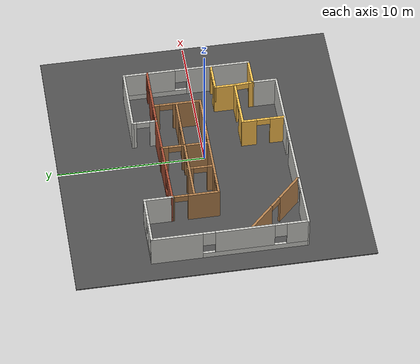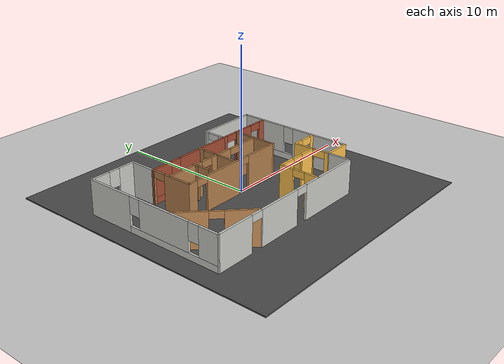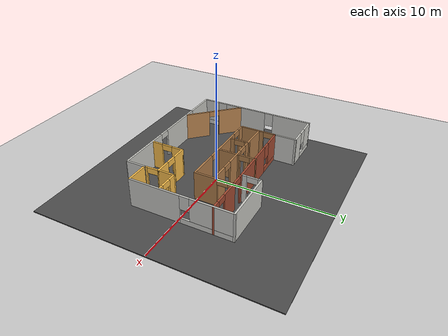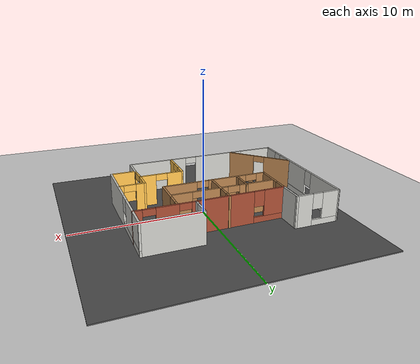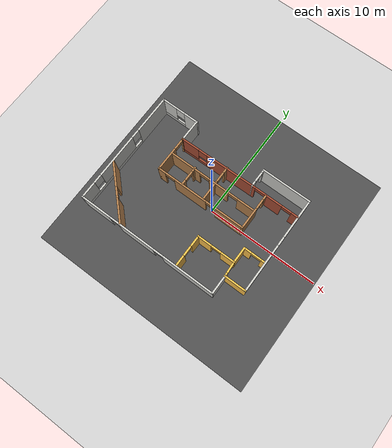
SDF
<sdf version="1.6">
 <world name="default">
  <model name="ground_plane">
   <static>1</static>
   <link name="link">
    <collision name="collision">
     <geometry><plane><normal>0 0 1</normal><size>100 100</size></plane></geometry>
     <surface>
      <contact><collide_bitmask>65535</collide_bitmask></contact>
      <friction><ode><mu>100</mu><mu2>50</mu2></ode></friction>
     </surface>
    </collision>
    <visual name="visual">
     <cast_shadows>0</cast_shadows>
     <geometry><plane><normal>0 0 1</normal><size>100 100</size></plane></geometry>
     <material>
      <script><uri>file://media/materials/scripts/gazebo.material</uri><name>Gazebo/Grey</name></script>
     </material>
    </visual>
   </link>
  </model>
  <model name="s_building">
   <pose>-1.21112 -0.402781 0 0 -0 0</pose>
   <link name="Wall_0">
    <pose>-7.22496 0 0 0 0 -1.56983</pose>
    <visual name="Wall_0_Visual_0">
     <pose>-3.5193 0 1.25 0 -0 0</pose>
     <geometry><box><size>3.4614 0.15 2.5</size></box></geometry>
     <material>
      <script><uri>file://media/materials/scripts/gazebo.material</uri><name>Gazebo/CeilingTiled</name></script>
      <ambient>1 0.764706 0.305882 1</ambient>
     </material>
     <meta><layer>0</layer></meta>
    </visual>
    <collision name="Wall_0_Collision_0">
     <geometry><box><size>3.4614 0.15 2.5</size></box></geometry>
     <pose>-3.5193 0 1.25 0 -0 0</pose>
    </collision>
    <visual name="Wall_0_Visual_1">
     <pose>1.7307 0 0.25 0 -0 0</pose>
     <geometry><box><size>7.0386 0.15 0.5</size></box></geometry>
     <material>
      <script><uri>file://media/materials/scripts/gazebo.material</uri><name>Gazebo/CeilingTiled</name></script>
      <ambient>1 0.764706 0.305882 1</ambient>
     </material>
     <meta><layer>0</layer></meta>
    </visual>
    <collision name="Wall_0_Collision_1">
     <geometry><box><size>7.0386 0.15 0.5</size></box></geometry>
     <pose>1.7307 0 0.25 0 -0 0</pose>
    </collision>
    <visual name="Wall_0_Visual_2">
     <pose>0.984095 0 1.5 0 -0 0</pose>
     <geometry><box><size>3.94539 0.15 2</size></box></geometry>
     <material>
      <script><uri>file://media/materials/scripts/gazebo.material</uri><name>Gazebo/CeilingTiled</name></script>
      <ambient>1 0.764706 0.305882 1</ambient>
     </material>
     <meta><layer>0</layer></meta>
    </visual>
    <collision name="Wall_0_Collision_2">
     <geometry><box><size>3.94539 0.15 2</size></box></geometry>
     <pose>0.984095 0 1.5 0 -0 0</pose>
    </collision>
    <visual name="Wall_0_Visual_3">
     <pose>4.5034 0 1.5 0 -0 0</pose>
     <geometry><box><size>1.49321 0.15 2</size></box></geometry>
     <material>
      <script><uri>file://media/materials/scripts/gazebo.material</uri><name>Gazebo/CeilingTiled</name></script>
      <ambient>1 0.764706 0.305882 1</ambient>
     </material>
     <meta><layer>0</layer></meta>
    </visual>
    <collision name="Wall_0_Collision_3">
     <geometry><box><size>1.49321 0.15 2</size></box></geometry>
     <pose>4.5034 0 1.5 0 -0 0</pose>
    </collision>
    <visual name="Wall_0_Visual_4">
     <pose>-1.3886 0 1.9 0 -0 0</pose>
     <geometry><box><size>0.8 0.15 1.2</size></box></geometry>
     <material>
      <script><uri>file://media/materials/scripts/gazebo.material</uri><name>Gazebo/CeilingTiled</name></script>
      <ambient>1 0.764706 0.305882 1</ambient>
     </material>
     <meta><layer>0</layer></meta>
    </visual>
    <collision name="Wall_0_Collision_4">
     <geometry><box><size>0.8 0.15 1.2</size></box></geometry>
     <pose>-1.3886 0 1.9 0 -0 0</pose>
    </collision>
    <visual name="Wall_0_Visual_5">
     <pose>3.35679 0 1.9 0 -0 0</pose>
     <geometry><box><size>0.8 0.15 1.2</size></box></geometry>
     <material>
      <script><uri>file://media/materials/scripts/gazebo.material</uri><name>Gazebo/CeilingTiled</name></script>
      <ambient>1 0.764706 0.305882 1</ambient>
     </material>
     <meta><layer>0</layer></meta>
    </visual>
    <collision name="Wall_0_Collision_5">
     <geometry><box><size>0.8 0.15 1.2</size></box></geometry>
     <pose>3.35679 0 1.9 0 -0 0</pose>
    </collision>
   </link>
   <link name="Wall_1">
    <pose>-0.928655 -5.175 0 0 -0 0</pose>
    <visual name="Wall_1_Visual_0">
     <pose>-4.95324 0 1.25 0 -0 0</pose>
     <geometry><box><size>2.82615 0.15 2.5</size></box></geometry>
     <material>
      <script><uri>file://media/materials/scripts/gazebo.material</uri><name>Gazebo/CeilingTiled</name></script>
      <ambient>1 0.764706 0.305882 1</ambient>
     </material>
     <meta><layer>0</layer></meta>
    </visual>
    <collision name="Wall_1_Collision_0">
     <geometry><box><size>2.82615 0.15 2.5</size></box></geometry>
     <pose>-4.95324 0 1.25 0 -0 0</pose>
    </collision>
    <visual name="Wall_1_Visual_1">
     <pose>-0.973326 0 1.25 0 -0 0</pose>
     <geometry><box><size>3.33368 0.15 2.5</size></box></geometry>
     <material>
      <script><uri>file://media/materials/scripts/gazebo.material</uri><name>Gazebo/CeilingTiled</name></script>
      <ambient>1 0.764706 0.305882 1</ambient>
     </material>
     <meta><layer>0</layer></meta>
    </visual>
    <collision name="Wall_1_Collision_1">
     <geometry><box><size>3.33368 0.15 2.5</size></box></geometry>
     <pose>-0.973326 0 1.25 0 -0 0</pose>
    </collision>
    <visual name="Wall_1_Visual_2">
     <pose>3.97991 0 1.25 0 -0 0</pose>
     <geometry><box><size>4.7728 0.15 2.5</size></box></geometry>
     <material>
      <script><uri>file://media/materials/scripts/gazebo.material</uri><name>Gazebo/CeilingTiled</name></script>
      <ambient>1 0.764706 0.305882 1</ambient>
     </material>
     <meta><layer>0</layer></meta>
    </visual>
    <collision name="Wall_1_Collision_2">
     <geometry><box><size>4.7728 0.15 2.5</size></box></geometry>
     <pose>3.97991 0 1.25 0 -0 0</pose>
    </collision>
    <visual name="Wall_1_Visual_3">
     <pose>-3.09016 0 2.25 0 -0 0</pose>
     <geometry><box><size>0.9 0.15 0.5</size></box></geometry>
     <material>
      <script><uri>file://media/materials/scripts/gazebo.material</uri><name>Gazebo/CeilingTiled</name></script>
      <ambient>1 0.764706 0.305882 1</ambient>
     </material>
     <meta><layer>0</layer></meta>
    </visual>
    <collision name="Wall_1_Collision_3">
     <geometry><box><size>0.9 0.15 0.5</size></box></geometry>
     <pose>-3.09016 0 2.25 0 -0 0</pose>
    </collision>
    <visual name="Wall_1_Visual_4">
     <pose>1.14351 0 2.25 0 -0 0</pose>
     <geometry><box><size>0.9 0.15 0.5</size></box></geometry>
     <material>
      <script><uri>file://media/materials/scripts/gazebo.material</uri><name>Gazebo/CeilingTiled</name></script>
      <ambient>1 0.764706 0.305882 1</ambient>
     </material>
     <meta><layer>0</layer></meta>
    </visual>
    <collision name="Wall_1_Collision_4">
     <geometry><box><size>0.9 0.15 0.5</size></box></geometry>
     <pose>1.14351 0 2.25 0 -0 0</pose>
    </collision>
   </link>
   <link name="Wall_11">
    <pose>5.05504 3.425 0 0 -0 0</pose>
    <visual name="Wall_11_Visual_0">
     <pose>-2.0487 0 1.25 0 -0 0</pose>
     <geometry><box><size>0.402592 0.15 2.5</size></box></geometry>
     <material>
      <script><uri>file://media/materials/scripts/gazebo.material</uri><name>Gazebo/Bricks</name></script>
      <ambient>1 0.764706 0.305882 1</ambient>
     </material>
     <meta><layer>0</layer></meta>
    </visual>
    <collision name="Wall_11_Collision_0">
     <geometry><box><size>0.402592 0.15 2.5</size></box></geometry>
     <pose>-2.0487 0 1.25 0 -0 0</pose>
    </collision>
    <visual name="Wall_11_Visual_1">
     <pose>-0.141263 0 1.25 0 -0 0</pose>
     <geometry><box><size>1.61229 0.15 2.5</size></box></geometry>
     <material>
      <script><uri>file://media/materials/scripts/gazebo.material</uri><name>Gazebo/Bricks</name></script>
      <ambient>1 0.764706 0.305882 1</ambient>
     </material>
     <meta><layer>0</layer></meta>
    </visual>
    <collision name="Wall_11_Collision_1">
     <geometry><box><size>1.61229 0.15 2.5</size></box></geometry>
     <pose>-0.141263 0 1.25 0 -0 0</pose>
    </collision>
    <visual name="Wall_11_Visual_2">
     <pose>1.90744 0 1.25 0 -0 0</pose>
     <geometry><box><size>0.685117 0.15 2.5</size></box></geometry>
     <material>
      <script><uri>file://media/materials/scripts/gazebo.material</uri><name>Gazebo/Bricks</name></script>
      <ambient>1 0.764706 0.305882 1</ambient>
     </material>
     <meta><layer>0</layer></meta>
    </visual>
    <collision name="Wall_11_Collision_2">
     <geometry><box><size>0.685117 0.15 2.5</size></box></geometry>
     <pose>1.90744 0 1.25 0 -0 0</pose>
    </collision>
    <visual name="Wall_11_Visual_3">
     <pose>-1.39741 0 2.25 0 -0 0</pose>
     <geometry><box><size>0.9 0.15 0.5</size></box></geometry>
     <material>
      <script><uri>file://media/materials/scripts/gazebo.material</uri><name>Gazebo/Bricks</name></script>
      <ambient>1 0.764706 0.305882 1</ambient>
     </material>
     <meta><layer>0</layer></meta>
    </visual>
    <collision name="Wall_11_Collision_3">
     <geometry><box><size>0.9 0.15 0.5</size></box></geometry>
     <pose>-1.39741 0 2.25 0 -0 0</pose>
    </collision>
    <visual name="Wall_11_Visual_4">
     <pose>1.11488 0 2.25 0 -0 0</pose>
     <geometry><box><size>0.9 0.15 0.5</size></box></geometry>
     <material>
      <script><uri>file://media/materials/scripts/gazebo.material</uri><name>Gazebo/Bricks</name></script>
      <ambient>1 0.764706 0.305882 1</ambient>
     </material>
     <meta><layer>0</layer></meta>
    </visual>
    <collision name="Wall_11_Collision_4">
     <geometry><box><size>0.9 0.15 0.5</size></box></geometry>
     <pose>1.11488 0 2.25 0 -0 0</pose>
    </collision>
   </link>
   <link name="Wall_13">
    <pose>-3.86997 1.775 0 0 0 -1.5708</pose>
    <visual name="Wall_13_Visual_0">
     <pose>-1.5189 0 1.25 0 -0 0</pose>
     <geometry><box><size>0.212208 0.15 2.5</size></box></geometry>
     <material>
      <script><uri>file://media/materials/scripts/gazebo.material</uri><name>Gazebo/Wood</name></script>
      <ambient>1 1 1 1</ambient>
     </material>
     <meta><layer>0</layer></meta>
    </visual>
    <collision name="Wall_13_Collision_0">
     <geometry><box><size>0.212208 0.15 2.5</size></box></geometry>
     <pose>-1.5189 0 1.25 0 -0 0</pose>
    </collision>
    <visual name="Wall_13_Visual_1">
     <pose>0.556104 0 1.25 0 -0 0</pose>
     <geometry><box><size>2.13779 0.15 2.5</size></box></geometry>
     <material>
      <script><uri>file://media/materials/scripts/gazebo.material</uri><name>Gazebo/Wood</name></script>
      <ambient>1 1 1 1</ambient>
     </material>
     <meta><layer>0</layer></meta>
    </visual>
    <collision name="Wall_13_Collision_1">
     <geometry><box><size>2.13779 0.15 2.5</size></box></geometry>
     <pose>0.556104 0 1.25 0 -0 0</pose>
    </collision>
    <visual name="Wall_13_Visual_2">
     <pose>-0.962792 0 2.25 0 -0 0</pose>
     <geometry><box><size>0.9 0.15 0.5</size></box></geometry>
     <material>
      <script><uri>file://media/materials/scripts/gazebo.material</uri><name>Gazebo/Wood</name></script>
      <ambient>1 1 1 1</ambient>
     </material>
     <meta><layer>0</layer></meta>
    </visual>
    <collision name="Wall_13_Collision_2">
     <geometry><box><size>0.9 0.15 0.5</size></box></geometry>
     <pose>-0.962792 0 2.25 0 -0 0</pose>
    </collision>
   </link>
   <link name="Wall_14">
    <pose>0.180036 0.225 0 0 -0 0</pose>
    <visual name="Wall_14_Visual_0">
     <pose>-3.75885 0 1.25 0 -0 0</pose>
     <geometry><box><size>0.732292 0.15 2.5</size></box></geometry>
     <material>
      <script><uri>file://media/materials/scripts/gazebo.material</uri><name>Gazebo/Wood</name></script>
      <ambient>1 1 1 1</ambient>
     </material>
     <meta><layer>0</layer></meta>
    </visual>
    <collision name="Wall_14_Collision_0">
     <geometry><box><size>0.732292 0.15 2.5</size></box></geometry>
     <pose>-3.75885 0 1.25 0 -0 0</pose>
    </collision>
    <visual name="Wall_14_Visual_1">
     <pose>-0.965442 0 1.25 0 -0 0</pose>
     <geometry><box><size>3.05453 0.15 2.5</size></box></geometry>
     <material>
      <script><uri>file://media/materials/scripts/gazebo.material</uri><name>Gazebo/Wood</name></script>
      <ambient>1 1 1 1</ambient>
     </material>
     <meta><layer>0</layer></meta>
    </visual>
    <collision name="Wall_14_Collision_1">
     <geometry><box><size>3.05453 0.15 2.5</size></box></geometry>
     <pose>-0.965442 0 1.25 0 -0 0</pose>
    </collision>
    <visual name="Wall_14_Visual_2">
     <pose>2.79341 0 1.25 0 -0 0</pose>
     <geometry><box><size>2.66318 0.15 2.5</size></box></geometry>
     <material>
      <script><uri>file://media/materials/scripts/gazebo.material</uri><name>Gazebo/Wood</name></script>
      <ambient>1 1 1 1</ambient>
     </material>
     <meta><layer>0</layer></meta>
    </visual>
    <collision name="Wall_14_Collision_2">
     <geometry><box><size>2.66318 0.15 2.5</size></box></geometry>
     <pose>2.79341 0 1.25 0 -0 0</pose>
    </collision>
    <visual name="Wall_14_Visual_3">
     <pose>-2.94271 0 2.25 0 -0 0</pose>
     <geometry><box><size>0.9 0.15 0.5</size></box></geometry>
     <material>
      <script><uri>file://media/materials/scripts/gazebo.material</uri><name>Gazebo/Wood</name></script>
      <ambient>1 1 1 1</ambient>
     </material>
     <meta><layer>0</layer></meta>
    </visual>
    <collision name="Wall_14_Collision_3">
     <geometry><box><size>0.9 0.15 0.5</size></box></geometry>
     <pose>-2.94271 0 2.25 0 -0 0</pose>
    </collision>
    <visual name="Wall_14_Visual_4">
     <pose>1.01182 0 2.25 0 -0 0</pose>
     <geometry><box><size>0.9 0.15 0.5</size></box></geometry>
     <material>
      <script><uri>file://media/materials/scripts/gazebo.material</uri><name>Gazebo/Wood</name></script>
      <ambient>1 1 1 1</ambient>
     </material>
     <meta><layer>0</layer></meta>
    </visual>
    <collision name="Wall_14_Collision_4">
     <geometry><box><size>0.9 0.15 0.5</size></box></geometry>
     <pose>1.01182 0 2.25 0 -0 0</pose>
    </collision>
   </link>
   <link name="Wall_15">
    <pose>4.23004 1.775 0 0 -0 1.5708</pose>
    <visual name="Wall_15_Visual_0">
     <pose>-0.649152 0 1.25 0 -0 0</pose>
     <geometry><box><size>1.9517 0.15 2.5</size></box></geometry>
     <material>
      <script><uri>file://media/materials/scripts/gazebo.material</uri><name>Gazebo/Wood</name></script>
      <ambient>1 1 1 1</ambient>
     </material>
     <meta><layer>0</layer></meta>
    </visual>
    <collision name="Wall_15_Collision_0">
     <geometry><box><size>1.9517 0.15 2.5</size></box></geometry>
     <pose>-0.649152 0 1.25 0 -0 0</pose>
    </collision>
    <visual name="Wall_15_Visual_1">
     <pose>1.42585 0 1.25 0 -0 0</pose>
     <geometry><box><size>0.398304 0.15 2.5</size></box></geometry>
     <material>
      <script><uri>file://media/materials/scripts/gazebo.material</uri><name>Gazebo/Wood</name></script>
      <ambient>1 1 1 1</ambient>
     </material>
     <meta><layer>0</layer></meta>
    </visual>
    <collision name="Wall_15_Collision_1">
     <geometry><box><size>0.398304 0.15 2.5</size></box></geometry>
     <pose>1.42585 0 1.25 0 -0 0</pose>
    </collision>
    <visual name="Wall_15_Visual_2">
     <pose>0.776696 0 2.25 0 -0 0</pose>
     <geometry><box><size>0.9 0.15 0.5</size></box></geometry>
     <material>
      <script><uri>file://media/materials/scripts/gazebo.material</uri><name>Gazebo/Wood</name></script>
      <ambient>1 1 1 1</ambient>
     </material>
     <meta><layer>0</layer></meta>
    </visual>
    <collision name="Wall_15_Collision_2">
     <geometry><box><size>0.9 0.15 0.5</size></box></geometry>
     <pose>0.776696 0 2.25 0 -0 0</pose>
    </collision>
   </link>
   <link name="Wall_17">
    <pose>0.138801 1.85384 0 0 -0 0</pose>
    <visual name="Wall_17_Visual_0">
     <pose>-2.58243 0 1.25 0 -0 0</pose>
     <geometry><box><size>2.83515 0.15 2.5</size></box></geometry>
     <material>
      <script><uri>file://media/materials/scripts/gazebo.material</uri><name>Gazebo/Wood</name></script>
      <ambient>1 1 1 1</ambient>
     </material>
     <meta><layer>0</layer></meta>
    </visual>
    <collision name="Wall_17_Collision_0">
     <geometry><box><size>2.83515 0.15 2.5</size></box></geometry>
     <pose>-2.58243 0 1.25 0 -0 0</pose>
    </collision>
    <visual name="Wall_17_Visual_1">
     <pose>0.657606 0 1.25 0 -0 0</pose>
     <geometry><box><size>1.84491 0.15 2.5</size></box></geometry>
     <material>
      <script><uri>file://media/materials/scripts/gazebo.material</uri><name>Gazebo/Wood</name></script>
      <ambient>1 1 1 1</ambient>
     </material>
     <meta><layer>0</layer></meta>
    </visual>
    <collision name="Wall_17_Collision_1">
     <geometry><box><size>1.84491 0.15 2.5</size></box></geometry>
     <pose>0.657606 0 1.25 0 -0 0</pose>
    </collision>
    <visual name="Wall_17_Visual_2">
     <pose>3.24003 0 1.25 0 -0 0</pose>
     <geometry><box><size>1.51994 0.15 2.5</size></box></geometry>
     <material>
      <script><uri>file://media/materials/scripts/gazebo.material</uri><name>Gazebo/Wood</name></script>
      <ambient>1 1 1 1</ambient>
     </material>
     <meta><layer>0</layer></meta>
    </visual>
    <collision name="Wall_17_Collision_2">
     <geometry><box><size>1.51994 0.15 2.5</size></box></geometry>
     <pose>3.24003 0 1.25 0 -0 0</pose>
    </collision>
    <visual name="Wall_17_Visual_3">
     <pose>-0.71485 0 2.25 0 -0 0</pose>
     <geometry><box><size>0.9 0.15 0.5</size></box></geometry>
     <material>
      <script><uri>file://media/materials/scripts/gazebo.material</uri><name>Gazebo/Wood</name></script>
      <ambient>1 1 1 1</ambient>
     </material>
     <meta><layer>0</layer></meta>
    </visual>
    <collision name="Wall_17_Collision_3">
     <geometry><box><size>0.9 0.15 0.5</size></box></geometry>
     <pose>-0.71485 0 2.25 0 -0 0</pose>
    </collision>
    <visual name="Wall_17_Visual_4">
     <pose>2.03006 0 2.25 0 -0 0</pose>
     <geometry><box><size>0.9 0.15 0.5</size></box></geometry>
     <material>
      <script><uri>file://media/materials/scripts/gazebo.material</uri><name>Gazebo/Wood</name></script>
      <ambient>1 1 1 1</ambient>
     </material>
     <meta><layer>0</layer></meta>
    </visual>
    <collision name="Wall_17_Collision_4">
     <geometry><box><size>0.9 0.15 0.5</size></box></geometry>
     <pose>2.03006 0 2.25 0 -0 0</pose>
    </collision>
   </link>
   <link name="Wall_19">
    <pose>0.447477 1.88565 0 0 0 -1.5708</pose>
    <visual name="Wall_19_Visual_0">
     <pose>-1.34726 0 1.25 0 -0 0</pose>
     <geometry><box><size>0.555478 0.15 2.5</size></box></geometry>
     <material>
      <script><uri>file://media/materials/scripts/gazebo.material</uri><name>Gazebo/Wood</name></script>
      <ambient>1 1 1 1</ambient>
     </material>
     <meta><layer>0</layer></meta>
    </visual>
    <collision name="Wall_19_Collision_0">
     <geometry><box><size>0.555478 0.15 2.5</size></box></geometry>
     <pose>-1.34726 0 1.25 0 -0 0</pose>
    </collision>
    <visual name="Wall_19_Visual_1">
     <pose>0.727739 0 1.25 0 -0 0</pose>
     <geometry><box><size>1.79452 0.15 2.5</size></box></geometry>
     <material>
      <script><uri>file://media/materials/scripts/gazebo.material</uri><name>Gazebo/Wood</name></script>
      <ambient>1 1 1 1</ambient>
     </material>
     <meta><layer>0</layer></meta>
    </visual>
    <collision name="Wall_19_Collision_1">
     <geometry><box><size>1.79452 0.15 2.5</size></box></geometry>
     <pose>0.727739 0 1.25 0 -0 0</pose>
    </collision>
    <visual name="Wall_19_Visual_2">
     <pose>-0.619522 0 2.25 0 -0 0</pose>
     <geometry><box><size>0.9 0.15 0.5</size></box></geometry>
     <material>
      <script><uri>file://media/materials/scripts/gazebo.material</uri><name>Gazebo/Wood</name></script>
      <ambient>1 1 1 1</ambient>
     </material>
     <meta><layer>0</layer></meta>
    </visual>
    <collision name="Wall_19_Collision_2">
     <geometry><box><size>0.9 0.15 0.5</size></box></geometry>
     <pose>-0.619522 0 2.25 0 -0 0</pose>
    </collision>
   </link>
   <link name="Wall_2">
    <collision name="Wall_2_Collision">
     <geometry><box><size>1.75 0.15 2.5</size></box></geometry>
     <pose>0 0 1.25 0 -0 0</pose>
    </collision>
    <visual name="Wall_2_Visual">
     <pose>0 0 1.25 0 -0 0</pose>
     <geometry><box><size>1.75 0.15 2.5</size></box></geometry>
     <material>
      <script><uri>file://media/materials/scripts/gazebo.material</uri><name>Gazebo/CeilingTiled</name></script>
      <ambient>1 0.764706 0.305882 1</ambient>
     </material>
     <meta><layer>0</layer></meta>
    </visual>
    <pose>5.36266 -4.32848 0 0 -0 1.5708</pose>
   </link>
   <link name="Wall_21">
    <pose>-1.59957 1.14688 0 0 0 -1.5708</pose>
    <visual name="Wall_21_Visual_0">
     <pose>-0.643785 0 1.25 0 -0 0</pose>
     <geometry><box><size>0.46243 0.15 2.5</size></box></geometry>
     <material>
      <script><uri>file://media/materials/scripts/gazebo.material</uri><name>Gazebo/Wood</name></script>
      <ambient>1 1 1 1</ambient>
     </material>
     <meta><layer>0</layer></meta>
    </visual>
    <collision name="Wall_21_Collision_0">
     <geometry><box><size>0.46243 0.15 2.5</size></box></geometry>
     <pose>-0.643785 0 1.25 0 -0 0</pose>
    </collision>
    <visual name="Wall_21_Visual_1">
     <pose>0.681215 0 1.25 0 -0 0</pose>
     <geometry><box><size>0.38757 0.15 2.5</size></box></geometry>
     <material>
      <script><uri>file://media/materials/scripts/gazebo.material</uri><name>Gazebo/Wood</name></script>
      <ambient>1 1 1 1</ambient>
     </material>
     <meta><layer>0</layer></meta>
    </visual>
    <collision name="Wall_21_Collision_1">
     <geometry><box><size>0.38757 0.15 2.5</size></box></geometry>
     <pose>0.681215 0 1.25 0 -0 0</pose>
    </collision>
    <visual name="Wall_21_Visual_2">
     <pose>0.03743 0 2.25 0 -0 0</pose>
     <geometry><box><size>0.9 0.15 0.5</size></box></geometry>
     <material>
      <script><uri>file://media/materials/scripts/gazebo.material</uri><name>Gazebo/Wood</name></script>
      <ambient>1 1 1 1</ambient>
     </material>
     <meta><layer>0</layer></meta>
    </visual>
    <collision name="Wall_21_Collision_2">
     <geometry><box><size>0.9 0.15 0.5</size></box></geometry>
     <pose>0.03743 0 2.25 0 -0 0</pose>
    </collision>
   </link>
   <link name="Wall_23">
    <pose>-5.3328 -3.29901 0 0 0 -0.785398</pose>
    <visual name="Wall_23_Visual_0">
     <pose>-1.5295 0 1.25 0 -0 0</pose>
     <geometry><box><size>2.191 0.15 2.5</size></box></geometry>
     <material>
      <script><uri>file://media/materials/scripts/gazebo.material</uri><name>Gazebo/Wood</name></script>
      <ambient>1 1 1 1</ambient>
     </material>
     <meta><layer>0</layer></meta>
    </visual>
    <collision name="Wall_23_Collision_0">
     <geometry><box><size>2.191 0.15 2.5</size></box></geometry>
     <pose>-1.5295 0 1.25 0 -0 0</pose>
    </collision>
    <visual name="Wall_23_Visual_1">
     <pose>1.5455 0 1.25 0 -0 0</pose>
     <geometry><box><size>2.15901 0.15 2.5</size></box></geometry>
     <material>
      <script><uri>file://media/materials/scripts/gazebo.material</uri><name>Gazebo/Wood</name></script>
      <ambient>1 1 1 1</ambient>
     </material>
     <meta><layer>0</layer></meta>
    </visual>
    <collision name="Wall_23_Collision_1">
     <geometry><box><size>2.15901 0.15 2.5</size></box></geometry>
     <pose>1.5455 0 1.25 0 -0 0</pose>
    </collision>
    <visual name="Wall_23_Visual_2">
     <pose>0.015995 0 2.25 0 -0 0</pose>
     <geometry><box><size>0.9 0.15 0.5</size></box></geometry>
     <material>
      <script><uri>file://media/materials/scripts/gazebo.material</uri><name>Gazebo/Wood</name></script>
      <ambient>1 1 1 1</ambient>
     </material>
     <meta><layer>0</layer></meta>
    </visual>
    <collision name="Wall_23_Collision_2">
     <geometry><box><size>0.9 0.15 0.5</size></box></geometry>
     <pose>0.015995 0 2.25 0 -0 0</pose>
    </collision>
   </link>
   <link name="Wall_25">
    <pose>1.93624 -3.74627 0 0 -0 1.5708</pose>
    <visual name="Wall_25_Visual_0">
     <pose>-0.966379 0 1.25 0 -0 0</pose>
     <geometry><box><size>1.06724 0.15 2.5</size></box></geometry>
     <material>
      <script><uri>file://media/materials/scripts/gazebo.material</uri><name>Gazebo/Grey</name></script>
      <ambient>1 0.764706 0.305882 1</ambient>
     </material>
     <meta><layer>0</layer></meta>
    </visual>
    <collision name="Wall_25_Collision_0">
     <geometry><box><size>1.06724 0.15 2.5</size></box></geometry>
     <pose>-0.966379 0 1.25 0 -0 0</pose>
    </collision>
    <visual name="Wall_25_Visual_1">
     <pose>0.983621 0 1.25 0 -0 0</pose>
     <geometry><box><size>1.03276 0.15 2.5</size></box></geometry>
     <material>
      <script><uri>file://media/materials/scripts/gazebo.material</uri><name>Gazebo/Grey</name></script>
      <ambient>1 0.764706 0.305882 1</ambient>
     </material>
     <meta><layer>0</layer></meta>
    </visual>
    <collision name="Wall_25_Collision_1">
     <geometry><box><size>1.03276 0.15 2.5</size></box></geometry>
     <pose>0.983621 0 1.25 0 -0 0</pose>
    </collision>
    <visual name="Wall_25_Visual_2">
     <pose>0.017241 0 2.25 0 -0 0</pose>
     <geometry><box><size>0.9 0.15 0.5</size></box></geometry>
     <material>
      <script><uri>file://media/materials/scripts/gazebo.material</uri><name>Gazebo/Grey</name></script>
      <ambient>1 0.764706 0.305882 1</ambient>
     </material>
     <meta><layer>0</layer></meta>
    </visual>
    <collision name="Wall_25_Collision_2">
     <geometry><box><size>0.9 0.15 0.5</size></box></geometry>
     <pose>0.017241 0 2.25 0 -0 0</pose>
    </collision>
   </link>
   <link name="Wall_26">
    <pose>3.61124 -2.32127 0 0 -0 0</pose>
    <visual name="Wall_26_Visual_0">
     <pose>-1.10007 0 1.25 0 -0 0</pose>
     <geometry><box><size>1.29986 0.15 2.5</size></box></geometry>
     <material>
      <script><uri>file://media/materials/scripts/gazebo.material</uri><name>Gazebo/Grey</name></script>
      <ambient>1 0.764706 0.305882 1</ambient>
     </material>
     <meta><layer>0</layer></meta>
    </visual>
    <collision name="Wall_26_Collision_0">
     <geometry><box><size>1.29986 0.15 2.5</size></box></geometry>
     <pose>-1.10007 0 1.25 0 -0 0</pose>
    </collision>
    <visual name="Wall_26_Visual_1">
     <pose>1.09993 0 1.25 0 -0 0</pose>
     <geometry><box><size>1.30014 0.15 2.5</size></box></geometry>
     <material>
      <script><uri>file://media/materials/scripts/gazebo.material</uri><name>Gazebo/Grey</name></script>
      <ambient>1 0.764706 0.305882 1</ambient>
     </material>
     <meta><layer>0</layer></meta>
    </visual>
    <collision name="Wall_26_Collision_1">
     <geometry><box><size>1.30014 0.15 2.5</size></box></geometry>
     <pose>1.09993 0 1.25 0 -0 0</pose>
    </collision>
    <visual name="Wall_26_Visual_2">
     <pose>-0.000139 0 2.25 0 -0 0</pose>
     <geometry><box><size>0.9 0.15 0.5</size></box></geometry>
     <material>
      <script><uri>file://media/materials/scripts/gazebo.material</uri><name>Gazebo/Grey</name></script>
      <ambient>1 0.764706 0.305882 1</ambient>
     </material>
     <meta><layer>0</layer></meta>
    </visual>
    <collision name="Wall_26_Collision_2">
     <geometry><box><size>0.9 0.15 0.5</size></box></geometry>
     <pose>-0.000139 0 2.25 0 -0 0</pose>
    </collision>
   </link>
   <link name="Wall_27">
    <collision name="Wall_27_Collision">
     <geometry><box><size>1.5 0.15 2.5</size></box></geometry>
     <pose>0 0 1.25 0 -0 0</pose>
    </collision>
    <visual name="Wall_27_Visual">
     <pose>0 0 1.25 0 -0 0</pose>
     <geometry><box><size>1.5 0.15 2.5</size></box></geometry>
     <material>
      <script><uri>file://media/materials/scripts/gazebo.material</uri><name>Gazebo/Grey</name></script>
      <ambient>1 0.764706 0.305882 1</ambient>
     </material>
     <meta><layer>0</layer></meta>
    </visual>
    <pose>5.28624 -1.64627 0 0 -0 1.5708</pose>
   </link>
   <link name="Wall_28">
    <pose>6.21124 -0.971274 0 0 -0 0</pose>
    <visual name="Wall_28_Visual_0">
     <pose>-0.629352 0 1.25 0 -0 0</pose>
     <geometry><box><size>0.741296 0.15 2.5</size></box></geometry>
     <material>
      <script><uri>file://media/materials/scripts/gazebo.material</uri><name>Gazebo/Grey</name></script>
      <ambient>1 0.764706 0.305882 1</ambient>
     </material>
     <meta><layer>0</layer></meta>
    </visual>
    <collision name="Wall_28_Collision_0">
     <geometry><box><size>0.741296 0.15 2.5</size></box></geometry>
     <pose>-0.629352 0 1.25 0 -0 0</pose>
    </collision>
    <visual name="Wall_28_Visual_1">
     <pose>0.820648 0 1.25 0 -0 0</pose>
     <geometry><box><size>0.358704 0.15 2.5</size></box></geometry>
     <material>
      <script><uri>file://media/materials/scripts/gazebo.material</uri><name>Gazebo/Grey</name></script>
      <ambient>1 0.764706 0.305882 1</ambient>
     </material>
     <meta><layer>0</layer></meta>
    </visual>
    <collision name="Wall_28_Collision_1">
     <geometry><box><size>0.358704 0.15 2.5</size></box></geometry>
     <pose>0.820648 0 1.25 0 -0 0</pose>
    </collision>
    <visual name="Wall_28_Visual_2">
     <pose>0.191296 0 2.25 0 -0 0</pose>
     <geometry><box><size>0.9 0.15 0.5</size></box></geometry>
     <material>
      <script><uri>file://media/materials/scripts/gazebo.material</uri><name>Gazebo/Grey</name></script>
      <ambient>1 0.764706 0.305882 1</ambient>
     </material>
     <meta><layer>0</layer></meta>
    </visual>
    <collision name="Wall_28_Collision_2">
     <geometry><box><size>0.9 0.15 0.5</size></box></geometry>
     <pose>0.191296 0 2.25 0 -0 0</pose>
    </collision>
   </link>
   <link name="Wall_3">
    <collision name="Wall_3_Collision">
     <geometry><box><size>2.01738 0.15 2.5</size></box></geometry>
     <pose>0 0 1.25 0 -0 0</pose>
    </collision>
    <visual name="Wall_3_Visual">
     <pose>0 0 1.25 0 -0 0</pose>
     <geometry><box><size>2.01738 0.15 2.5</size></box></geometry>
     <material>
      <script><uri>file://media/materials/scripts/gazebo.material</uri><name>Gazebo/Grey</name></script>
      <ambient>1 0.764706 0.305882 1</ambient>
     </material>
     <meta><layer>0</layer></meta>
    </visual>
    <pose>6.29634 -3.575 0 0 -0 0</pose>
   </link>
   <link name="Wall_30">
    <pose>5.32445 -2.94814 0 0 0 -1.50992</pose>
    <visual name="Wall_30_Visual_0">
     <pose>-0.629118 0 1.25 0 -0 0</pose>
     <geometry><box><size>0.147817 0.15 2.5</size></box></geometry>
     <material>
      <script><uri>file://media/materials/scripts/gazebo.material</uri><name>Gazebo/Grey</name></script>
      <ambient>1 0.764706 0.305882 1</ambient>
     </material>
     <meta><layer>0</layer></meta>
    </visual>
    <collision name="Wall_30_Collision_0">
     <geometry><box><size>0.147817 0.15 2.5</size></box></geometry>
     <pose>-0.629118 0 1.25 0 -0 0</pose>
    </collision>
    <visual name="Wall_30_Visual_1">
     <pose>0.523909 0 1.25 0 -0 0</pose>
     <geometry><box><size>0.358236 0.15 2.5</size></box></geometry>
     <material>
      <script><uri>file://media/materials/scripts/gazebo.material</uri><name>Gazebo/Grey</name></script>
      <ambient>1 0.764706 0.305882 1</ambient>
     </material>
     <meta><layer>0</layer></meta>
    </visual>
    <collision name="Wall_30_Collision_1">
     <geometry><box><size>0.358236 0.15 2.5</size></box></geometry>
     <pose>0.523909 0 1.25 0 -0 0</pose>
    </collision>
    <visual name="Wall_30_Visual_2">
     <pose>-0.105209 0 2.25 0 -0 0</pose>
     <geometry><box><size>0.9 0.15 0.5</size></box></geometry>
     <material>
      <script><uri>file://media/materials/scripts/gazebo.material</uri><name>Gazebo/Grey</name></script>
      <ambient>1 0.764706 0.305882 1</ambient>
     </material>
     <meta><layer>0</layer></meta>
    </visual>
    <collision name="Wall_30_Collision_2">
     <geometry><box><size>0.9 0.15 0.5</size></box></geometry>
     <pose>-0.105209 0 2.25 0 -0 0</pose>
    </collision>
   </link>
   <link name="Wall_4">
    <pose>7.23004 0.725 0 0 -0 1.5708</pose>
    <visual name="Wall_4_Visual_0">
     <pose>-2.19527 0 1.25 0 -0 0</pose>
     <geometry><box><size>4.35945 0.15 2.5</size></box></geometry>
     <material>
      <script><uri>file://media/materials/scripts/gazebo.material</uri><name>Gazebo/CeilingTiled</name></script>
      <ambient>1 0.764706 0.305882 1</ambient>
     </material>
     <meta><layer>0</layer></meta>
    </visual>
    <collision name="Wall_4_Collision_0">
     <geometry><box><size>4.35945 0.15 2.5</size></box></geometry>
     <pose>-2.19527 0 1.25 0 -0 0</pose>
    </collision>
    <visual name="Wall_4_Visual_1">
     <pose>2.17973 0 0.25 0 -0 0</pose>
     <geometry><box><size>4.39055 0.15 0.5</size></box></geometry>
     <material>
      <script><uri>file://media/materials/scripts/gazebo.material</uri><name>Gazebo/CeilingTiled</name></script>
      <ambient>1 0.764706 0.305882 1</ambient>
     </material>
     <meta><layer>0</layer></meta>
    </visual>
    <collision name="Wall_4_Collision_1">
     <geometry><box><size>4.39055 0.15 0.5</size></box></geometry>
     <pose>2.17973 0 0.25 0 -0 0</pose>
    </collision>
    <visual name="Wall_4_Visual_2">
     <pose>2.57973 0 1.5 0 -0 0</pose>
     <geometry><box><size>3.59055 0.15 2</size></box></geometry>
     <material>
      <script><uri>file://media/materials/scripts/gazebo.material</uri><name>Gazebo/CeilingTiled</name></script>
      <ambient>1 0.764706 0.305882 1</ambient>
     </material>
     <meta><layer>0</layer></meta>
    </visual>
    <collision name="Wall_4_Collision_2">
     <geometry><box><size>3.59055 0.15 2</size></box></geometry>
     <pose>2.57973 0 1.5 0 -0 0</pose>
    </collision>
    <visual name="Wall_4_Visual_3">
     <pose>0.384455 0 1.9 0 -0 0</pose>
     <geometry><box><size>0.8 0.15 1.2</size></box></geometry>
     <material>
      <script><uri>file://media/materials/scripts/gazebo.material</uri><name>Gazebo/CeilingTiled</name></script>
      <ambient>1 0.764706 0.305882 1</ambient>
     </material>
     <meta><layer>0</layer></meta>
    </visual>
    <collision name="Wall_4_Collision_3">
     <geometry><box><size>0.8 0.15 1.2</size></box></geometry>
     <pose>0.384455 0 1.9 0 -0 0</pose>
    </collision>
   </link>
   <link name="Wall_5">
    <collision name="Wall_5_Collision">
     <geometry><box><size>4.5 0.15 2.5</size></box></geometry>
     <pose>0 0 1.25 0 -0 0</pose>
    </collision>
    <visual name="Wall_5_Visual">
     <pose>0 0 1.25 0 -0 0</pose>
     <geometry><box><size>4.5 0.15 2.5</size></box></geometry>
     <material>
      <script><uri>file://media/materials/scripts/gazebo.material</uri><name>Gazebo/CeilingTiled</name></script>
      <ambient>1 0.764706 0.305882 1</ambient>
     </material>
     <meta><layer>0</layer></meta>
    </visual>
    <pose>5.05504 5.025 0 0 -0 3.14159</pose>
   </link>
   <link name="Wall_6">
    <pose>2.88004 4.225 0 0 0 -1.5708</pose>
    <visual name="Wall_6_Visual_0">
     <pose>-0.709802 0 1.25 0 -0 0</pose>
     <geometry><box><size>0.330395 0.15 2.5</size></box></geometry>
     <material>
      <script><uri>file://media/materials/scripts/gazebo.material</uri><name>Gazebo/CeilingTiled</name></script>
      <ambient>1 0.764706 0.305882 1</ambient>
     </material>
     <meta><layer>0</layer></meta>
    </visual>
    <collision name="Wall_6_Collision_0">
     <geometry><box><size>0.330395 0.15 2.5</size></box></geometry>
     <pose>-0.709802 0 1.25 0 -0 0</pose>
    </collision>
    <visual name="Wall_6_Visual_1">
     <pose>0.615198 0 1.25 0 -0 0</pose>
     <geometry><box><size>0.519605 0.15 2.5</size></box></geometry>
     <material>
      <script><uri>file://media/materials/scripts/gazebo.material</uri><name>Gazebo/CeilingTiled</name></script>
      <ambient>1 0.764706 0.305882 1</ambient>
     </material>
     <meta><layer>0</layer></meta>
    </visual>
    <collision name="Wall_6_Collision_1">
     <geometry><box><size>0.519605 0.15 2.5</size></box></geometry>
     <pose>0.615198 0 1.25 0 -0 0</pose>
    </collision>
    <visual name="Wall_6_Visual_2">
     <pose>-0.094605 0 2.25 0 -0 0</pose>
     <geometry><box><size>0.9 0.15 0.5</size></box></geometry>
     <material>
      <script><uri>file://media/materials/scripts/gazebo.material</uri><name>Gazebo/CeilingTiled</name></script>
      <ambient>1 0.764706 0.305882 1</ambient>
     </material>
     <meta><layer>0</layer></meta>
    </visual>
    <collision name="Wall_6_Collision_2">
     <geometry><box><size>0.9 0.15 0.5</size></box></geometry>
     <pose>-0.094605 0 2.25 0 -0 0</pose>
    </collision>
   </link>
   <link name="Wall_7">
    <pose>-0.494964 3.375 0 0 0 -3.12678</pose>
    <visual name="Wall_7_Visual_0">
     <pose>-1.23234 0 1.25 0 -0 0</pose>
     <geometry><box><size>4.43698 0.15 2.5</size></box></geometry>
     <material>
      <script><uri>file://media/materials/scripts/gazebo.material</uri><name>Gazebo/Bricks</name></script>
      <ambient>1 1 1 1</ambient>
     </material>
     <meta><layer>0</layer></meta>
    </visual>
    <collision name="Wall_7_Collision_0">
     <geometry><box><size>4.43698 0.15 2.5</size></box></geometry>
     <pose>-1.23234 0 1.25 0 -0 0</pose>
    </collision>
    <visual name="Wall_7_Visual_1">
     <pose>2.21849 0 0.25 0 -0 0</pose>
     <geometry><box><size>2.46468 0.15 0.5</size></box></geometry>
     <material>
      <script><uri>file://media/materials/scripts/gazebo.material</uri><name>Gazebo/Bricks</name></script>
      <ambient>1 1 1 1</ambient>
     </material>
     <meta><layer>0</layer></meta>
    </visual>
    <collision name="Wall_7_Collision_1">
     <geometry><box><size>2.46468 0.15 0.5</size></box></geometry>
     <pose>2.21849 0 0.25 0 -0 0</pose>
    </collision>
    <visual name="Wall_7_Visual_2">
     <pose>2.61849 0 1.5 0 -0 0</pose>
     <geometry><box><size>1.66468 0.15 2</size></box></geometry>
     <material>
      <script><uri>file://media/materials/scripts/gazebo.material</uri><name>Gazebo/Bricks</name></script>
      <ambient>1 1 1 1</ambient>
     </material>
     <meta><layer>0</layer></meta>
    </visual>
    <collision name="Wall_7_Collision_2">
     <geometry><box><size>1.66468 0.15 2</size></box></geometry>
     <pose>2.61849 0 1.5 0 -0 0</pose>
    </collision>
    <visual name="Wall_7_Visual_3">
     <pose>1.38615 0 1.9 0 -0 0</pose>
     <geometry><box><size>0.8 0.15 1.2</size></box></geometry>
     <material>
      <script><uri>file://media/materials/scripts/gazebo.material</uri><name>Gazebo/Bricks</name></script>
      <ambient>1 1 1 1</ambient>
     </material>
     <meta><layer>0</layer></meta>
    </visual>
    <collision name="Wall_7_Collision_3">
     <geometry><box><size>0.8 0.15 1.2</size></box></geometry>
     <pose>1.38615 0 1.9 0 -0 0</pose>
    </collision>
   </link>
   <link name="Wall_8">
    <collision name="Wall_8_Collision">
     <geometry><box><size>2 0.15 2.5</size></box></geometry>
     <pose>0 0 1.25 0 -0 0</pose>
    </collision>
    <visual name="Wall_8_Visual">
     <pose>0 0 1.25 0 -0 0</pose>
     <geometry><box><size>2 0.15 2.5</size></box></geometry>
     <material>
      <script><uri>file://media/materials/scripts/gazebo.material</uri><name>Gazebo/CeilingTiled</name></script>
      <ambient>1 0.764706 0.305882 1</ambient>
     </material>
     <meta><layer>0</layer></meta>
    </visual>
    <pose>-3.86997 4.25 0 0 -0 1.5708</pose>
   </link>
   <link name="Wall_9">
    <pose>-5.52336 5.175 0 0 -0 3.14159</pose>
    <visual name="Wall_9_Visual_0">
     <pose>-1.08539 0 1.25 0 -0 0</pose>
     <geometry><box><size>1.33922 0.15 2.5</size></box></geometry>
     <material>
      <script><uri>file://media/materials/scripts/gazebo.material</uri><name>Gazebo/CeilingTiled</name></script>
      <ambient>1 0.764706 0.305882 1</ambient>
     </material>
     <meta><layer>0</layer></meta>
    </visual>
    <collision name="Wall_9_Collision_0">
     <geometry><box><size>1.33922 0.15 2.5</size></box></geometry>
     <pose>-1.08539 0 1.25 0 -0 0</pose>
    </collision>
    <visual name="Wall_9_Visual_1">
     <pose>0.66961 0 0.25 0 -0 0</pose>
     <geometry><box><size>2.17078 0.15 0.5</size></box></geometry>
     <material>
      <script><uri>file://media/materials/scripts/gazebo.material</uri><name>Gazebo/CeilingTiled</name></script>
      <ambient>1 0.764706 0.305882 1</ambient>
     </material>
     <meta><layer>0</layer></meta>
    </visual>
    <collision name="Wall_9_Collision_1">
     <geometry><box><size>2.17078 0.15 0.5</size></box></geometry>
     <pose>0.66961 0 0.25 0 -0 0</pose>
    </collision>
    <visual name="Wall_9_Visual_2">
     <pose>1.06961 0 1.5 0 -0 0</pose>
     <geometry><box><size>1.37078 0.15 2</size></box></geometry>
     <material>
      <script><uri>file://media/materials/scripts/gazebo.material</uri><name>Gazebo/CeilingTiled</name></script>
      <ambient>1 0.764706 0.305882 1</ambient>
     </material>
     <meta><layer>0</layer></meta>
    </visual>
    <collision name="Wall_9_Collision_2">
     <geometry><box><size>1.37078 0.15 2</size></box></geometry>
     <pose>1.06961 0 1.5 0 -0 0</pose>
    </collision>
    <visual name="Wall_9_Visual_3">
     <pose>-0.01578 0 1.9 0 -0 0</pose>
     <geometry><box><size>0.8 0.15 1.2</size></box></geometry>
     <material>
      <script><uri>file://media/materials/scripts/gazebo.material</uri><name>Gazebo/CeilingTiled</name></script>
      <ambient>1 0.764706 0.305882 1</ambient>
     </material>
     <meta><layer>0</layer></meta>
    </visual>
    <collision name="Wall_9_Collision_3">
     <geometry><box><size>0.8 0.15 1.2</size></box></geometry>
     <pose>-0.01578 0 1.9 0 -0 0</pose>
    </collision>
   </link>
   <static>1</static>
  </model>
  <model name="asphalt_plane">
   <static>1</static>
   <link name="link">
    <collision name="collision"><geometry><box><size>20 20 0.1</size></box></geometry></collision>
    <visual name="visual">
     <cast_shadows>0</cast_shadows>
     <geometry><box><size>20 20 0.1</size></box></geometry>
     <material>
      <script>
       <uri>model://asphalt_plane/materials/scripts</uri>
       <uri>model://asphalt_plane/materials/textures</uri>
       <name>vrc/asphalt</name>
      </script>
     </material>
    </visual>
   </link>
   <pose>0.120009 -0.032107 0 0 -0 0</pose>
  </model>
 </world>
</sdf>
